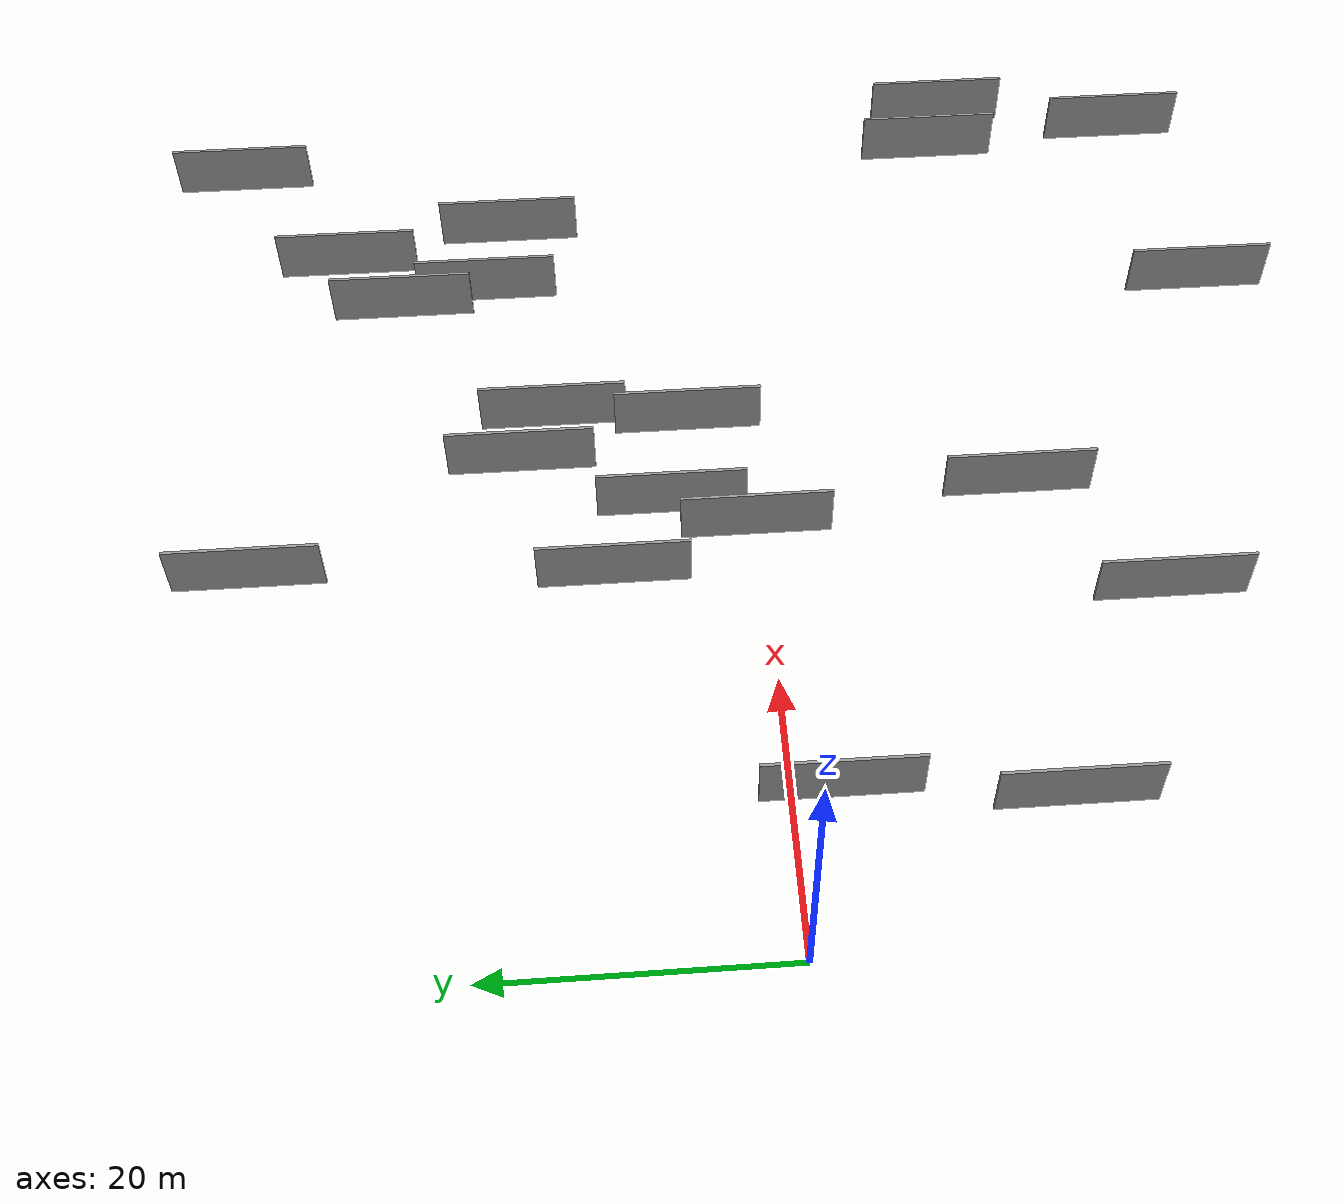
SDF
<sdf version="1.6">
 <world name="default">
  <scene>
   <sky><clouds><speed>12</speed></clouds></sky>
   <ambient>0.4 0.4 0.4 1</ambient>
   <background>0.7 0.7 0.7 1</background>
   <shadows>1</shadows>
  </scene>
  <gravity>0 0 -9.8066</gravity>
  <magnetic_field>6e-06 2.3e-05 -4.2e-05</magnetic_field>
  <physics default="0" name="default_physics" type="ode">
   <ode>
    <solver>
     <type>quick</type>
     <iters>10</iters>
     <sor>1.0</sor>
     <use_dynamic_moi_rescaling>0</use_dynamic_moi_rescaling>
    </solver>
    <constraints>
     <cfm>0</cfm>
     <erp>0.2</erp>
     <contact_max_correcting_vel>100</contact_max_correcting_vel>
     <contact_surface_layer>0.001</contact_surface_layer>
    </constraints>
   </ode>
   <max_step_size>0.004</max_step_size>
   <real_time_factor>1</real_time_factor>
   <real_time_update_rate>250</real_time_update_rate>
  </physics>
  <light name="sun" type="directional">
   <pose>0 0 10 0 0 0</pose>
   <diffuse>0.8 0.8 0.8 1</diffuse>
   <specular>0.2 0.2 0.2 1</specular>
   <attenuation>
    <range>1000</range>
    <constant>0.9</constant>
    <linear>0.01</linear>
    <quadratic>0.001</quadratic>
   </attenuation>
   <direction>-0.5 0.1 -0.9</direction>
  </light>
  <model name="grey_wall_1">
   <static>1</static>
   <pose>8.2752 -2.5555 5.0 0.000000 0.000000 1.570796</pose>
   <link name="link">
    <pose>0 0 2.00 0 0 0</pose>
    <collision name="collision"><geometry><box><size>10.00 0.2 4.00</size></box></geometry></collision>
    <visual name="visual">
     <cast_shadows>0</cast_shadows>
     <geometry><box><size>10.00 0.2 4.00</size></box></geometry>
     <material>
      <script>
       <uri>model://grey_wall/materials/scripts</uri>
       <uri>model://grey_wall/materials/textures</uri>
       <name>vrc/grey_wall</name>
      </script>
     </material>
    </visual>
   </link>
  </model>
  <model name="grey_wall_2">
   <static>1</static>
   <pose>49.0769 -33.2562 5.0 0.000000 0.000000 1.570796</pose>
   <link name="link">
    <pose>0 0 2.00 0 0 0</pose>
    <collision name="collision"><geometry><box><size>10.00 0.2 4.00</size></box></geometry></collision>
    <visual name="visual">
     <cast_shadows>0</cast_shadows>
     <geometry><box><size>10.00 0.2 4.00</size></box></geometry>
     <material>
      <script>
       <uri>model://grey_wall/materials/scripts</uri>
       <uri>model://grey_wall/materials/textures</uri>
       <name>vrc/grey_wall</name>
      </script>
     </material>
    </visual>
   </link>
  </model>
  <model name="grey_wall_3">
   <static>1</static>
   <pose>66.2617 -30.2694 5.0 0.000000 0.000000 1.570796</pose>
   <link name="link">
    <pose>0 0 2.00 0 0 0</pose>
    <collision name="collision"><geometry><box><size>10.00 0.2 4.00</size></box></geometry></collision>
    <visual name="visual">
     <cast_shadows>0</cast_shadows>
     <geometry><box><size>10.00 0.2 4.00</size></box></geometry>
     <material>
      <script>
       <uri>model://grey_wall/materials/scripts</uri>
       <uri>model://grey_wall/materials/textures</uri>
       <name>vrc/grey_wall</name>
      </script>
     </material>
    </visual>
   </link>
  </model>
  <model name="grey_wall_4">
   <static>1</static>
   <pose>50.2032 24.6366 5.0 0.000000 0.000000 1.570796</pose>
   <link name="link">
    <pose>0 0 2.00 0 0 0</pose>
    <collision name="collision"><geometry><box><size>10.00 0.2 4.00</size></box></geometry></collision>
    <visual name="visual">
     <cast_shadows>0</cast_shadows>
     <geometry><box><size>10.00 0.2 4.00</size></box></geometry>
     <material>
      <script>
       <uri>model://grey_wall/materials/scripts</uri>
       <uri>model://grey_wall/materials/textures</uri>
       <name>vrc/grey_wall</name>
      </script>
     </material>
    </visual>
   </link>
  </model>
  <model name="grey_wall_5">
   <static>1</static>
   <pose>37.9070 4.7780 5.0 0.000000 0.000000 1.570796</pose>
   <link name="link">
    <pose>0 0 2.00 0 0 0</pose>
    <collision name="collision"><geometry><box><size>10.00 0.2 4.00</size></box></geometry></collision>
    <visual name="visual">
     <cast_shadows>0</cast_shadows>
     <geometry><box><size>10.00 0.2 4.00</size></box></geometry>
     <material>
      <script>
       <uri>model://grey_wall/materials/scripts</uri>
       <uri>model://grey_wall/materials/textures</uri>
       <name>vrc/grey_wall</name>
      </script>
     </material>
    </visual>
   </link>
  </model>
  <model name="grey_wall_6">
   <static>1</static>
   <pose>64.7421 37.0832 5.0 0.000000 0.000000 1.570796</pose>
   <link name="link">
    <pose>0 0 2.00 0 0 0</pose>
    <collision name="collision"><geometry><box><size>10.00 0.2 4.00</size></box></geometry></collision>
    <visual name="visual">
     <cast_shadows>0</cast_shadows>
     <geometry><box><size>10.00 0.2 4.00</size></box></geometry>
     <material>
      <script>
       <uri>model://grey_wall/materials/scripts</uri>
       <uri>model://grey_wall/materials/textures</uri>
       <name>vrc/grey_wall</name>
      </script>
     </material>
    </visual>
   </link>
  </model>
  <model name="grey_wall_7">
   <static>1</static>
   <pose>6.7464 -16.4873 5.0 0.000000 0.000000 1.570796</pose>
   <link name="link">
    <pose>0 0 2.00 0 0 0</pose>
    <collision name="collision"><geometry><box><size>10.00 0.2 4.00</size></box></geometry></collision>
    <visual name="visual">
     <cast_shadows>0</cast_shadows>
     <geometry><box><size>10.00 0.2 4.00</size></box></geometry>
     <material>
      <script>
       <uri>model://grey_wall/materials/scripts</uri>
       <uri>model://grey_wall/materials/textures</uri>
       <name>vrc/grey_wall</name>
      </script>
     </material>
    </visual>
   </link>
  </model>
  <model name="grey_wall_8">
   <static>1</static>
   <pose>68.9569 -16.7948 5.0 0.000000 0.000000 1.570796</pose>
   <link name="link">
    <pose>0 0 2.00 0 0 0</pose>
    <collision name="collision"><geometry><box><size>10.00 0.2 4.00</size></box></geometry></collision>
    <visual name="visual">
     <cast_shadows>0</cast_shadows>
     <geometry><box><size>10.00 0.2 4.00</size></box></geometry>
     <material>
      <script>
       <uri>model://grey_wall/materials/scripts</uri>
       <uri>model://grey_wall/materials/textures</uri>
       <name>vrc/grey_wall</name>
      </script>
     </material>
    </visual>
   </link>
  </model>
  <model name="grey_wall_9">
   <static>1</static>
   <pose>25.0666 10.3537 5.0 0.000000 0.000000 1.570796</pose>
   <link name="link">
    <pose>0 0 2.00 0 0 0</pose>
    <collision name="collision"><geometry><box><size>10.00 0.2 4.00</size></box></geometry></collision>
    <visual name="visual">
     <cast_shadows>0</cast_shadows>
     <geometry><box><size>10.00 0.2 4.00</size></box></geometry>
     <material>
      <script>
       <uri>model://grey_wall/materials/scripts</uri>
       <uri>model://grey_wall/materials/textures</uri>
       <name>vrc/grey_wall</name>
      </script>
     </material>
    </visual>
   </link>
  </model>
  <model name="grey_wall_10">
   <static>1</static>
   <pose>30.7117 6.2708 5.0 0.000000 0.000000 1.570796</pose>
   <link name="link">
    <pose>0 0 2.00 0 0 0</pose>
    <collision name="collision"><geometry><box><size>10.00 0.2 4.00</size></box></geometry></collision>
    <visual name="visual">
     <cast_shadows>0</cast_shadows>
     <geometry><box><size>10.00 0.2 4.00</size></box></geometry>
     <material>
      <script>
       <uri>model://grey_wall/materials/scripts</uri>
       <uri>model://grey_wall/materials/textures</uri>
       <name>vrc/grey_wall</name>
      </script>
     </material>
    </visual>
   </link>
  </model>
  <model name="grey_wall_11">
   <static>1</static>
   <pose>34.9934 16.2437 5.0 0.000000 0.000000 1.570796</pose>
   <link name="link">
    <pose>0 0 2.00 0 0 0</pose>
    <collision name="collision"><geometry><box><size>10.00 0.2 4.00</size></box></geometry></collision>
    <visual name="visual">
     <cast_shadows>0</cast_shadows>
     <geometry><box><size>10.00 0.2 4.00</size></box></geometry>
     <material>
      <script>
       <uri>model://grey_wall/materials/scripts</uri>
       <uri>model://grey_wall/materials/textures</uri>
       <name>vrc/grey_wall</name>
      </script>
     </material>
    </visual>
   </link>
  </model>
  <model name="grey_wall_12">
   <static>1</static>
   <pose>64.8208 -15.5819 5.0 0.000000 0.000000 1.570796</pose>
   <link name="link">
    <pose>0 0 2.00 0 0 0</pose>
    <collision name="collision"><geometry><box><size>10.00 0.2 4.00</size></box></geometry></collision>
    <visual name="visual">
     <cast_shadows>0</cast_shadows>
     <geometry><box><size>10.00 0.2 4.00</size></box></geometry>
     <material>
      <script>
       <uri>model://grey_wall/materials/scripts</uri>
       <uri>model://grey_wall/materials/textures</uri>
       <name>vrc/grey_wall</name>
      </script>
     </material>
    </visual>
   </link>
  </model>
  <model name="grey_wall_13">
   <static>1</static>
   <pose>38.9391 13.9883 5.0 0.000000 0.000000 1.570796</pose>
   <link name="link">
    <pose>0 0 2.00 0 0 0</pose>
    <collision name="collision"><geometry><box><size>10.00 0.2 4.00</size></box></geometry></collision>
    <visual name="visual">
     <cast_shadows>0</cast_shadows>
     <geometry><box><size>10.00 0.2 4.00</size></box></geometry>
     <material>
      <script>
       <uri>model://grey_wall/materials/scripts</uri>
       <uri>model://grey_wall/materials/textures</uri>
       <name>vrc/grey_wall</name>
      </script>
     </material>
    </visual>
   </link>
  </model>
  <model name="grey_wall_14">
   <static>1</static>
   <pose>57.6074 16.9045 5.0 0.000000 0.000000 1.570796</pose>
   <link name="link">
    <pose>0 0 2.00 0 0 0</pose>
    <collision name="collision"><geometry><box><size>10.00 0.2 4.00</size></box></geometry></collision>
    <visual name="visual">
     <cast_shadows>0</cast_shadows>
     <geometry><box><size>10.00 0.2 4.00</size></box></geometry>
     <material>
      <script>
       <uri>model://grey_wall/materials/scripts</uri>
       <uri>model://grey_wall/materials/textures</uri>
       <name>vrc/grey_wall</name>
      </script>
     </material>
    </visual>
   </link>
  </model>
  <model name="grey_wall_15">
   <static>1</static>
   <pose>54.9142 28.7425 5.0 0.000000 0.000000 1.570796</pose>
   <link name="link">
    <pose>0 0 2.00 0 0 0</pose>
    <collision name="collision"><geometry><box><size>10.00 0.2 4.00</size></box></geometry></collision>
    <visual name="visual">
     <cast_shadows>0</cast_shadows>
     <geometry><box><size>10.00 0.2 4.00</size></box></geometry>
     <material>
      <script>
       <uri>model://grey_wall/materials/scripts</uri>
       <uri>model://grey_wall/materials/textures</uri>
       <name>vrc/grey_wall</name>
      </script>
     </material>
    </visual>
   </link>
  </model>
  <model name="grey_wall_16">
   <static>1</static>
   <pose>21.4777 -25.4282 5.0 0.000000 0.000000 1.570796</pose>
   <link name="link">
    <pose>0 0 2.00 0 0 0</pose>
    <collision name="collision"><geometry><box><size>10.00 0.2 4.00</size></box></geometry></collision>
    <visual name="visual">
     <cast_shadows>0</cast_shadows>
     <geometry><box><size>10.00 0.2 4.00</size></box></geometry>
     <material>
      <script>
       <uri>model://grey_wall/materials/scripts</uri>
       <uri>model://grey_wall/materials/textures</uri>
       <name>vrc/grey_wall</name>
      </script>
     </material>
    </visual>
   </link>
  </model>
  <model name="grey_wall_17">
   <static>1</static>
   <pose>26.4028 34.0244 5.0 0.000000 0.000000 1.570796</pose>
   <link name="link">
    <pose>0 0 2.00 0 0 0</pose>
    <collision name="collision"><geometry><box><size>10.00 0.2 4.00</size></box></geometry></collision>
    <visual name="visual">
     <cast_shadows>0</cast_shadows>
     <geometry><box><size>10.00 0.2 4.00</size></box></geometry>
     <material>
      <script>
       <uri>model://grey_wall/materials/scripts</uri>
       <uri>model://grey_wall/materials/textures</uri>
       <name>vrc/grey_wall</name>
      </script>
     </material>
    </visual>
   </link>
  </model>
  <model name="grey_wall_18">
   <static>1</static>
   <pose>28.4708 0.8219 5.0 0.000000 0.000000 1.570796</pose>
   <link name="link">
    <pose>0 0 2.00 0 0 0</pose>
    <collision name="collision"><geometry><box><size>10.00 0.2 4.00</size></box></geometry></collision>
    <visual name="visual">
     <cast_shadows>0</cast_shadows>
     <geometry><box><size>10.00 0.2 4.00</size></box></geometry>
     <material>
      <script>
       <uri>model://grey_wall/materials/scripts</uri>
       <uri>model://grey_wall/materials/textures</uri>
       <name>vrc/grey_wall</name>
      </script>
     </material>
    </visual>
   </link>
  </model>
  <model name="grey_wall_19">
   <static>1</static>
   <pose>30.7554 -16.9731 5.0 0.000000 0.000000 1.570796</pose>
   <link name="link">
    <pose>0 0 2.00 0 0 0</pose>
    <collision name="collision"><geometry><box><size>10.00 0.2 4.00</size></box></geometry></collision>
    <visual name="visual">
     <cast_shadows>0</cast_shadows>
     <geometry><box><size>10.00 0.2 4.00</size></box></geometry>
     <material>
      <script>
       <uri>model://grey_wall/materials/scripts</uri>
       <uri>model://grey_wall/materials/textures</uri>
       <name>vrc/grey_wall</name>
      </script>
     </material>
    </visual>
   </link>
  </model>
  <model name="grey_wall_20">
   <static>1</static>
   <pose>51.5362 18.5857 5.0 0.000000 0.000000 1.570796</pose>
   <link name="link">
    <pose>0 0 2.00 0 0 0</pose>
    <collision name="collision"><geometry><box><size>10.00 0.2 4.00</size></box></geometry></collision>
    <visual name="visual">
     <cast_shadows>0</cast_shadows>
     <geometry><box><size>10.00 0.2 4.00</size></box></geometry>
     <material>
      <script>
       <uri>model://grey_wall/materials/scripts</uri>
       <uri>model://grey_wall/materials/textures</uri>
       <name>vrc/grey_wall</name>
      </script>
     </material>
    </visual>
   </link>
  </model>
 </world>
</sdf>
